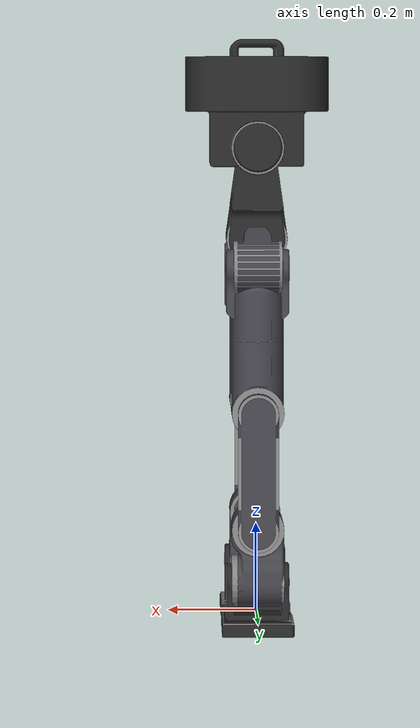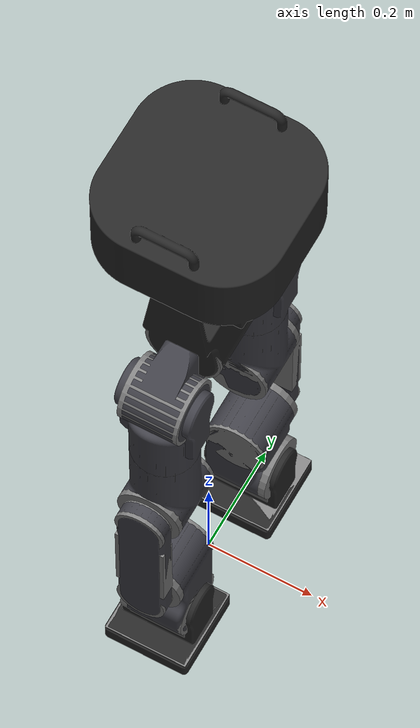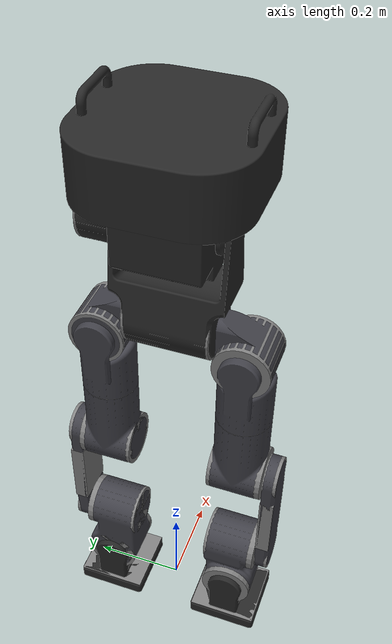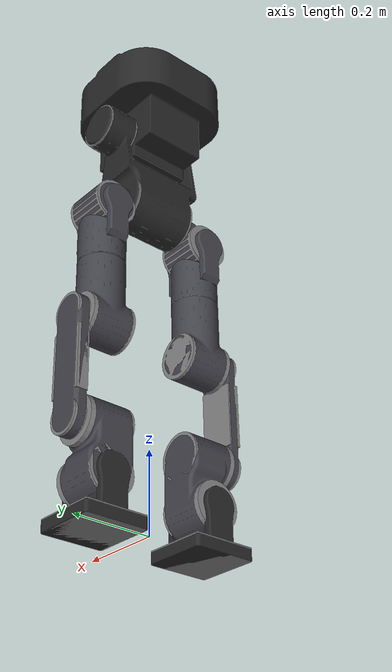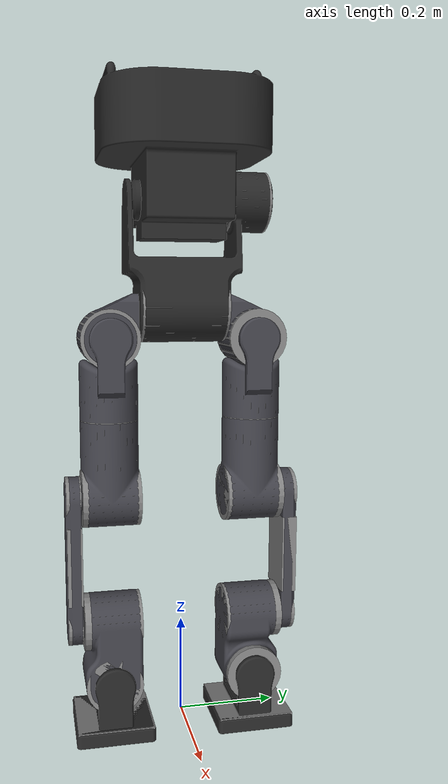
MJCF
<mujoco model="Diden_Walker_verD1">
    <compiler angle="radian" meshdir="." eulerseq="xyz"/>

    <option timestep="0.001" iterations="50" solver="Newton" tolerance="1e-10"/>

    <default>
        <geom condim="4" contype="1" conaffinity="1" friction="0.5 0.005 0.0001" solimp=".9 .99 .003" solref=".015 1" group="1"/>
        <joint limited="true" damping="0.0" armature="0.0"/>
        <motor ctrllimited="true" ctrlrange="-1 1"/>
    </default>

    <asset>
        <!-- Visual meshes (verD1 simplified collision model) -->
        <mesh name="Pelvis_Vis" file="STL/Diden_Walker_Simplified_Pelvis_verD1_20260317.stl"/>
        <mesh name="Base_Vis" file="STL/Diden_Walker_Simplified_Base_verD1_20260317.stl"/>
        <mesh name="Leg_L_Link_01_Vis" file="STL/Diden_Walker_Simplified_HP2HR_Left_verD1_20260317.stl"/>
        <mesh name="Leg_L_Link_02_Vis" file="STL/Diden_Walker_Simplified_HR2HY_Left_verD1_20260317.stl"/>
        <mesh name="Leg_L_Link_03_Vis" file="STL/Diden_Walker_Simplified_HY2K_Left_verD1_20260317.stl"/>
        <mesh name="Leg_L_Link_04_Vis" file="STL/Diden_Walker_Simplified_K2AP_Left_verD1_20260317.stl"/>
        <mesh name="Leg_L_Link_05_Vis" file="STL/Diden_Walker_Simplified_AP2AR_Left_verD1_20260317.stl"/>
        <mesh name="Leg_L_Link_06_Vis" file="STL/Diden_Walker_Simplified_AR2F_Left_verD1_20260317.stl"/>
        <mesh name="Leg_R_Link_01_Vis" file="STL/Diden_Walker_Simplified_HP2HR_Right_verD1_20260317.stl"/>
        <mesh name="Leg_R_Link_02_Vis" file="STL/Diden_Walker_Simplified_HR2HY_Right_verD1_20260317.stl"/>
        <mesh name="Leg_R_Link_03_Vis" file="STL/Diden_Walker_Simplified_HY2K_Right_verD1_20260317.stl"/>
        <mesh name="Leg_R_Link_04_Vis" file="STL/Diden_Walker_Simplified_K2AP_Right_verD1_20260317.stl"/>
        <mesh name="Leg_R_Link_05_Vis" file="STL/Diden_Walker_Simplified_AP2AR_Right_verD1_20260317.stl"/>
        <mesh name="Leg_R_Link_06_Vis" file="STL/Diden_Walker_Simplified_AR2F_Right_verD1_20260317.stl"/>

        <!-- Materials -->
        <material name="metallic" rgba="0.25 0.25 0.28 1.0"
                  specular="0.2" shininess="0.3" reflectance="0.1"/>
        <material name="matte_black" rgba="0.15 0.15 0.15 1.0"
                  specular="0.1" shininess="0.2" reflectance="0.05"/>
        <material name="dark_gray" rgba="0.25 0.25 0.28 1.0"
                  specular="0.2" shininess="0.3" reflectance="0.1"/>
    </asset>

    <worldbody>
        <light pos="0 0 3" dir="0 0 -1" diffuse="0.8 0.8 0.8"/>

        <!-- Pelvis as floating base -->
        <body name="Pelvis" pos="0 0 0.85">
            <freejoint name="root"/>
            <site name="imu" size="0.01" pos="0 0 0"/>
            <!-- From URDF: mass=8.26739kg, CoM=(-0.89, 32.29, 69.15)mm -->
            <inertial pos="-0.00089 0.03229 0.06915" mass="8.26739"
                      fullinertia="0.12137 0.08211 0.05623 -0.00047 -0.00086 0.03643"/>
            <geom type="mesh" mesh="Pelvis_Vis" material="matte_black" contype="0" conaffinity="0" group="0"/>
            <!-- Pelvis collision: lower cylinder (hip region) -->
            <geom name="Pelvis_Col_1" type="cylinder" size="0.068 0.085" quat="0.707107 0.707107 0 0"/>
            <!-- Pelvis collision: upper cylinder (waist region) -->
            <geom name="Pelvis_Col_2" type="cylinder" size="0.058 0.04" pos="0 0.127 0.205" quat="0.707107 0.707107 0 0"/>

            <!-- ==================== Left Leg ==================== -->
            <body name="Leg_L_Link_01" pos="0 0.088 0">
                <!-- Hip Pitch Link: mass=2.62970kg, CoM=(5.50, 50.30, -53.67)mm -->
                <inertial pos="0.00550 0.05030 -0.05367" mass="2.62970"
                          fullinertia="0.00491 0.00371 0.00373 0.00020 -0.00011 -0.00060"/>
                <joint name="Leg_L_ActiveJoint_01" type="hinge" axis="0 1 0"
                       range="-1.65806 1.65806" armature="0.000331"/>
                <geom type="mesh" mesh="Leg_L_Link_01_Vis" material="dark_gray" contype="0" conaffinity="0" group="0"/>
                <geom name="Leg_L_Link_01_Col" type="cylinder" size="0.058 0.0535" pos="0 0.05775 -0.06" quat="0.707107 0 -0.707107 0"/>

                <body name="Leg_L_Link_02" pos="0 0.05775 -0.06">
                    <!-- Hip Roll Link: mass=1.55288kg, CoM=(2.03, 0.71, -91.62)mm -->
                    <inertial pos="0.00203 0.00071 -0.09162" mass="1.55288"
                              fullinertia="0.00522 0.00644 0.00359 0.00002 0.00027 0.00002"/>
                    <joint name="Leg_L_ActiveJoint_02" type="hinge" axis="1 0 0"
                           range="-0.523599 2.09440" armature="0.000331"/>
                    <geom type="mesh" mesh="Leg_L_Link_02_Vis" material="dark_gray" contype="0" conaffinity="0" group="0"/>
                    <geom name="Leg_L_Link_02_Col" type="cylinder" size="0.058 0.045" pos="0 0 -0.115"/>

                    <body name="Leg_L_Link_03" pos="0 0 -0.16">
                        <!-- Hip Yaw Link: mass=5.00840kg, CoM=(3.05, 3.55, -103.02)mm -->
                        <inertial pos="0.00305 0.00355 -0.10302" mass="5.00840"
                                  fullinertia="0.02118 0.02263 0.00747 -0.00014 -0.00014 -0.00098"/>
                        <joint name="Leg_L_ActiveJoint_03" type="hinge" axis="0 0 1"
                               range="-1.57080 1.57080" armature="0.000331"/>
                        <geom type="mesh" mesh="Leg_L_Link_03_Vis" material="dark_gray" contype="0" conaffinity="0" group="0"/>
                        <geom name="Leg_L_Link_03_Col_1" type="cylinder" size="0.058 0.049" pos="0 0 -0.049"/>
                        <geom name="Leg_L_Link_03_Col_2" type="cylinder" size="0.058 0.058" pos="0 0 -0.16" quat="0.707107 0.707107 0 0"/>

                        <body name="Leg_L_Link_04" pos="0 0 -0.16">
                            <!-- Knee Pitch Link: mass=1.00185kg, CoM=(0, 70.08, -130)mm -->
                            <inertial pos="0.0 0.07008 -0.13" mass="1.00185"
                                      fullinertia="0.01152 0.01231 0.00095 0.0 0.0 0.0"/>
                            <joint name="Leg_L_ActiveJoint_04" type="hinge" axis="0 1 0"
                                   range="-2.61799 2.61799" armature="0.000331"/>
                            <geom type="mesh" mesh="Leg_L_Link_04_Vis" material="metallic" contype="0" conaffinity="0" group="0"/>
                            <geom name="Leg_L_Link_04_Col_1" type="cylinder" size="0.045 0.015" pos="0 0.075 0" quat="0.707107 0.707107 0 0"/>
                            <geom name="Leg_L_Link_04_Col_2" type="box" size="0.045 0.015 0.08" pos="0 0.075 -0.13"/>
                            <geom name="Leg_L_Link_04_Col_3" type="cylinder" size="0.045 0.015" pos="0 0.075 -0.26" quat="0.707107 0.707107 0 0"/>

                            <body name="Leg_L_Link_05" pos="0 0 -0.26">
                                <!-- Ankle Pitch Link: mass=5.23490kg, CoM=(4.35, 1.77, -61.11)mm -->
                                <inertial pos="0.00435 0.00177 -0.06111" mass="5.23490"
                                          fullinertia="0.02424 0.02423 0.00755 -0.00003 -0.00060 0.00166"/>
                                <joint name="Leg_L_ActiveJoint_05" type="hinge" axis="0 1 0"
                                       range="-2.53073 2.53073" armature="0.000331"/>
                                <geom type="mesh" mesh="Leg_L_Link_05_Vis" material="dark_gray" contype="0" conaffinity="0" group="0"/>
                                <geom name="Leg_L_Link_05_Col_1" type="cylinder" size="0.058 0.058" quat="0.707107 0.707107 0 0"/>
                                <geom name="Leg_L_Link_05_Col_2" type="cylinder" size="0.058 0.058" pos="0 0 -0.12" quat="0.707107 0 0.707107 0"/>

                                <body name="Leg_L_Link_06" pos="0 0 -0.12">
                                    <!-- Ankle Roll / Foot Link: mass=0.97436kg, CoM=(-3.27, 0, -65.29)mm -->
                                    <inertial pos="-0.00327 0.0 -0.06529" mass="0.97436"
                                              fullinertia="0.00304 0.00430 0.00347 0.0 -0.00018 0.0"/>
                                    <joint name="Leg_L_ActiveJoint_06" type="hinge" axis="1 0 0"
                                           range="-1.65806 1.65806" armature="0.000331"/>
                                    <geom type="mesh" mesh="Leg_L_Link_06_Vis" material="matte_black" contype="0" conaffinity="0" group="0"/>
                                    <geom name="Leg_L_Link_06_Col" type="box" size="0.0775 0.0775 0.0155" pos="0 0 -0.0995"/>
                                </body>
                            </body>
                        </body>
                    </body>
                </body>
            </body>

            <!-- ==================== Right Leg (mirrored) ==================== -->
            <body name="Leg_R_Link_01" pos="0 -0.088 0">
                <!-- Hip Pitch Link: mass=2.62970kg, CoM=(-5.50, -50.30, -53.67)mm -->
                <inertial pos="-0.00550 -0.05030 -0.05367" mass="2.62970"
                          fullinertia="0.00491 0.00371 0.00373 0.00020 0.00011 0.00060"/>
                <joint name="Leg_R_ActiveJoint_01" type="hinge" axis="0 1 0"
                       range="-1.65806 1.65806" armature="0.000331"/>
                <geom type="mesh" mesh="Leg_R_Link_01_Vis" material="dark_gray" contype="0" conaffinity="0" group="0"/>
                <geom name="Leg_R_Link_01_Col" type="cylinder" size="0.058 0.0535" pos="0 -0.05775 -0.06" quat="0.707107 0 -0.707107 0"/>

                <body name="Leg_R_Link_02" pos="0 -0.05775 -0.06">
                    <!-- Hip Roll Link: mass=1.55288kg, CoM=(-2.03, -0.71, -91.62)mm -->
                    <inertial pos="-0.00203 -0.00071 -0.09162" mass="1.55288"
                              fullinertia="0.00522 0.00644 0.00359 -0.00002 -0.00027 -0.00002"/>
                    <joint name="Leg_R_ActiveJoint_02" type="hinge" axis="1 0 0"
                           range="-2.09440 0.523599" armature="0.000331"/>
                    <geom type="mesh" mesh="Leg_R_Link_02_Vis" material="dark_gray" contype="0" conaffinity="0" group="0"/>
                    <geom name="Leg_R_Link_02_Col" type="cylinder" size="0.058 0.045" pos="0 0 -0.115"/>

                    <body name="Leg_R_Link_03" pos="0 0 -0.16">
                        <!-- Hip Yaw Link: mass=5.00840kg, CoM=(-3.05, -3.55, -103.02)mm -->
                        <inertial pos="-0.00305 -0.00355 -0.10302" mass="5.00840"
                                  fullinertia="0.02118 0.02263 0.00747 -0.00014 0.00014 0.00098"/>
                        <joint name="Leg_R_ActiveJoint_03" type="hinge" axis="0 0 1"
                               range="-1.57080 1.57080" armature="0.000331"/>
                        <geom type="mesh" mesh="Leg_R_Link_03_Vis" material="dark_gray" contype="0" conaffinity="0" group="0"/>
                        <geom name="Leg_R_Link_03_Col_1" type="cylinder" size="0.058 0.049" pos="0 0 -0.049"/>
                        <geom name="Leg_R_Link_03_Col_2" type="cylinder" size="0.058 0.058" pos="0 0 -0.16" quat="0.707107 0.707107 0 0"/>

                        <body name="Leg_R_Link_04" pos="0 0 -0.16">
                            <!-- Knee Pitch Link: mass=1.00185kg, CoM=(0, -70.08, -130)mm -->
                            <inertial pos="0.0 -0.07008 -0.13" mass="1.00185"
                                      fullinertia="0.01152 0.01231 0.00095 0.0 0.0 0.0"/>
                            <joint name="Leg_R_ActiveJoint_04" type="hinge" axis="0 1 0"
                                   range="-2.61799 2.61799" armature="0.000331"/>
                            <geom type="mesh" mesh="Leg_R_Link_04_Vis" material="metallic" contype="0" conaffinity="0" group="0"/>
                            <geom name="Leg_R_Link_04_Col_1" type="cylinder" size="0.045 0.015" pos="0 -0.075 0" quat="0.707107 0.707107 0 0"/>
                            <geom name="Leg_R_Link_04_Col_2" type="box" size="0.045 0.015 0.08" pos="0 -0.075 -0.13"/>
                            <geom name="Leg_R_Link_04_Col_3" type="cylinder" size="0.045 0.015" pos="0 -0.075 -0.26" quat="0.707107 0.707107 0 0"/>

                            <body name="Leg_R_Link_05" pos="0 0 -0.26">
                                <!-- Ankle Pitch Link: mass=5.23490kg, CoM=(-4.35, -1.77, -61.11)mm -->
                                <inertial pos="-0.00435 -0.00177 -0.06111" mass="5.23490"
                                          fullinertia="0.02424 0.02423 0.00755 -0.00003 0.00060 -0.00166"/>
                                <joint name="Leg_R_ActiveJoint_05" type="hinge" axis="0 1 0"
                                       range="-2.53073 2.53073" armature="0.000331"/>
                                <geom type="mesh" mesh="Leg_R_Link_05_Vis" material="dark_gray" contype="0" conaffinity="0" group="0"/>
                                <geom name="Leg_R_Link_05_Col_1" type="cylinder" size="0.058 0.058" quat="0.707107 0.707107 0 0"/>
                                <geom name="Leg_R_Link_05_Col_2" type="cylinder" size="0.058 0.058" pos="0 0 -0.12" quat="0.707107 0 0.707107 0"/>

                                <body name="Leg_R_Link_06" pos="0 0 -0.12">
                                    <!-- Ankle Roll / Foot Link: mass=0.97436kg, CoM=(3.27, 0, -65.29)mm -->
                                    <inertial pos="0.00327 0.0 -0.06529" mass="0.97436"
                                              fullinertia="0.00304 0.00430 0.00347 0.0 0.00018 0.0"/>
                                    <joint name="Leg_R_ActiveJoint_06" type="hinge" axis="1 0 0"
                                           range="-1.65806 1.65806" armature="0.000331"/>
                                    <geom type="mesh" mesh="Leg_R_Link_06_Vis" material="matte_black" contype="0" conaffinity="0" group="0"/>
                                    <geom name="Leg_R_Link_06_Col" type="box" size="0.0775 0.0775 0.0155" pos="0 0 -0.0995"/>
                                </body>
                            </body>
                        </body>
                    </body>
                </body>
            </body>

            <!-- ==================== Base (Upper Body) ==================== -->
            <body name="Base" pos="0 0 0.205">
                <!-- mass=10.13087kg, CoM=(-0.09, -0.12, 70.87)mm -->
                <inertial pos="-0.00009 -0.00012 0.07087" mass="10.13087"
                          fullinertia="0.14077 0.13863 0.13713 0.00023 -0.00088 0.00071"/>
                <joint name="Base_ActiveJoint_01" type="hinge" axis="0 1 0"
                       range="-1.57080 1.57080" armature="0.000331"/>
                <geom type="mesh" mesh="Base_Vis" material="matte_black" contype="0" conaffinity="0" group="0"/>
                <geom name="Base_Col" type="mesh" mesh="Base_Vis"/>
            </body>
        </body>
    </worldbody>

    <actuator>
        <!-- Actuators are defined via ActuatorCfg in didenwalker_constants.py -->
        <!-- This avoids duplication and allows programmatic control of actuator parameters -->
    </actuator>

</mujoco>
